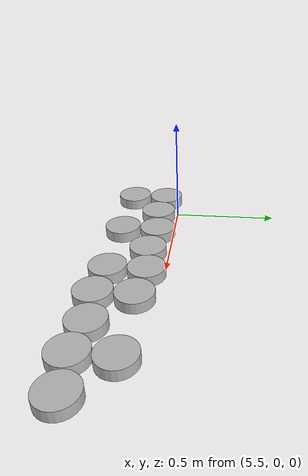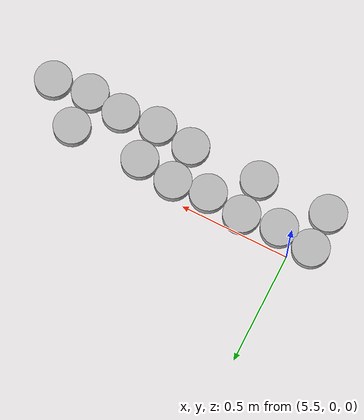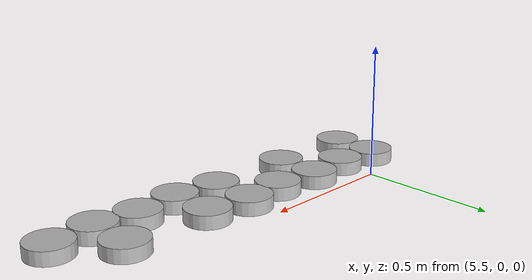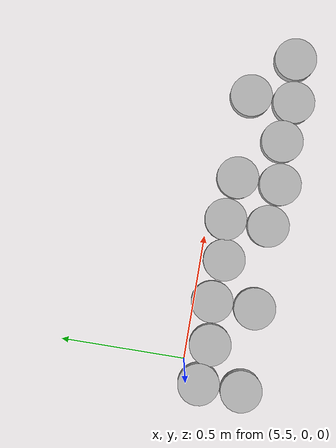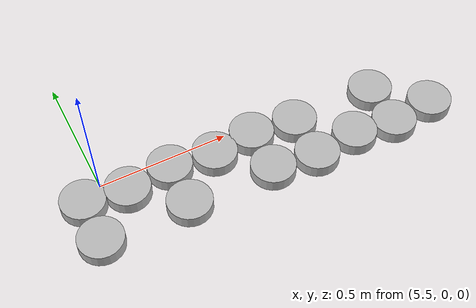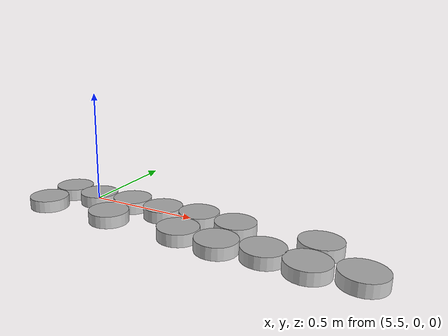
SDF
<sdf version="1.6">
 <world name="default">
  <model name="SnowPuck-23-1-0">
   <pose>5.42 -0.24 0.05  0 0 0</pose>
   <link name="link">
    <inertial>
     <mass>0.01</mass>
     <inertia><ixx>0.145833</ixx><ixy>0</ixy><ixz>0</ixz><iyy>0.145833</iyy><iyz>0</iyz><izz>0.125</izz></inertia>
    </inertial>
    <collision name="collision">
     <geometry><cylinder><radius>.05</radius><length>0.04</length></cylinder></geometry>
    </collision>
    <visual name="visual">
     <geometry><cylinder><radius>.083333</radius><length>0.05</length></cylinder></geometry>
    </visual>
   </link>
  </model>
  <model name="SnowPuck-23-2-0">
   <pose>5.42 -0.07 0.05  0 0 0</pose>
   <link name="link">
    <inertial>
     <mass>0.01</mass>
     <inertia><ixx>0.145833</ixx><ixy>0</ixy><ixz>0</ixz><iyy>0.145833</iyy><iyz>0</iyz><izz>0.125</izz></inertia>
    </inertial>
    <collision name="collision">
     <geometry><cylinder><radius>.05</radius><length>0.04</length></cylinder></geometry>
    </collision>
    <visual name="visual">
     <geometry><cylinder><radius>.083333</radius><length>0.05</length></cylinder></geometry>
    </visual>
   </link>
  </model>
  <model name="SnowPuck-24-2-0">
   <pose>5.58 -0.09 0.05  0 0 0</pose>
   <link name="link">
    <inertial>
     <mass>0.01</mass>
     <inertia><ixx>0.145833</ixx><ixy>0</ixy><ixz>0</ixz><iyy>0.145833</iyy><iyz>0</iyz><izz>0.125</izz></inertia>
    </inertial>
    <collision name="collision">
     <geometry><cylinder><radius>.05</radius><length>0.04</length></cylinder></geometry>
    </collision>
    <visual name="visual">
     <geometry><cylinder><radius>.083333</radius><length>0.05</length></cylinder></geometry>
    </visual>
   </link>
  </model>
  <model name="SnowPuck-25-1-0">
   <pose>5.75 -0.24 0.05  0 0 0</pose>
   <link name="link">
    <inertial>
     <mass>0.01</mass>
     <inertia><ixx>0.145833</ixx><ixy>0</ixy><ixz>0</ixz><iyy>0.145833</iyy><iyz>0</iyz><izz>0.125</izz></inertia>
    </inertial>
    <collision name="collision">
     <geometry><cylinder><radius>.05</radius><length>0.04</length></cylinder></geometry>
    </collision>
    <visual name="visual">
     <geometry><cylinder><radius>.083333</radius><length>0.05</length></cylinder></geometry>
    </visual>
   </link>
  </model>
  <model name="SnowPuck-25-2-0">
   <pose>5.75 -0.07 0.05  0 0 0</pose>
   <link name="link">
    <inertial>
     <mass>0.01</mass>
     <inertia><ixx>0.145833</ixx><ixy>0</ixy><ixz>0</ixz><iyy>0.145833</iyy><iyz>0</iyz><izz>0.125</izz></inertia>
    </inertial>
    <collision name="collision">
     <geometry><cylinder><radius>.05</radius><length>0.04</length></cylinder></geometry>
    </collision>
    <visual name="visual">
     <geometry><cylinder><radius>.083333</radius><length>0.05</length></cylinder></geometry>
    </visual>
   </link>
  </model>
  <model name="SnowPuck-26-2-0">
   <pose>5.92 -0.09 0.05  0 0 0</pose>
   <link name="link">
    <inertial>
     <mass>0.01</mass>
     <inertia><ixx>0.145833</ixx><ixy>0</ixy><ixz>0</ixz><iyy>0.145833</iyy><iyz>0</iyz><izz>0.125</izz></inertia>
    </inertial>
    <collision name="collision">
     <geometry><cylinder><radius>.05</radius><length>0.04</length></cylinder></geometry>
    </collision>
    <visual name="visual">
     <geometry><cylinder><radius>.083333</radius><length>0.05</length></cylinder></geometry>
    </visual>
   </link>
  </model>
  <model name="SnowPuck-27-1-0">
   <pose>6.08 -0.24 0.05  0 0 0</pose>
   <link name="link">
    <inertial>
     <mass>0.01</mass>
     <inertia><ixx>0.145833</ixx><ixy>0</ixy><ixz>0</ixz><iyy>0.145833</iyy><iyz>0</iyz><izz>0.125</izz></inertia>
    </inertial>
    <collision name="collision">
     <geometry><cylinder><radius>.05</radius><length>0.04</length></cylinder></geometry>
    </collision>
    <visual name="visual">
     <geometry><cylinder><radius>.083333</radius><length>0.05</length></cylinder></geometry>
    </visual>
   </link>
  </model>
  <model name="SnowPuck-27-2-0">
   <pose>6.08 -0.07 0.05  0 0 0</pose>
   <link name="link">
    <inertial>
     <mass>0.01</mass>
     <inertia><ixx>0.145833</ixx><ixy>0</ixy><ixz>0</ixz><iyy>0.145833</iyy><iyz>0</iyz><izz>0.125</izz></inertia>
    </inertial>
    <collision name="collision">
     <geometry><cylinder><radius>.05</radius><length>0.04</length></cylinder></geometry>
    </collision>
    <visual name="visual">
     <geometry><cylinder><radius>.083333</radius><length>0.05</length></cylinder></geometry>
    </visual>
   </link>
  </model>
  <model name="SnowPuck-28-1-0">
   <pose>6.25 -0.26 0.05  0 0 0</pose>
   <link name="link">
    <inertial>
     <mass>0.01</mass>
     <inertia><ixx>0.145833</ixx><ixy>0</ixy><ixz>0</ixz><iyy>0.145833</iyy><iyz>0</iyz><izz>0.125</izz></inertia>
    </inertial>
    <collision name="collision">
     <geometry><cylinder><radius>.05</radius><length>0.04</length></cylinder></geometry>
    </collision>
    <visual name="visual">
     <geometry><cylinder><radius>.083333</radius><length>0.05</length></cylinder></geometry>
    </visual>
   </link>
  </model>
  <model name="SnowPuck-28-2-0">
   <pose>6.25 -0.09 0.05  0 0 0</pose>
   <link name="link">
    <inertial>
     <mass>0.01</mass>
     <inertia><ixx>0.145833</ixx><ixy>0</ixy><ixz>0</ixz><iyy>0.145833</iyy><iyz>0</iyz><izz>0.125</izz></inertia>
    </inertial>
    <collision name="collision">
     <geometry><cylinder><radius>.05</radius><length>0.04</length></cylinder></geometry>
    </collision>
    <visual name="visual">
     <geometry><cylinder><radius>.083333</radius><length>0.05</length></cylinder></geometry>
    </visual>
   </link>
  </model>
  <model name="SnowPuck-29-1-0">
   <pose>6.42 -0.24 0.05  0 0 0</pose>
   <link name="link">
    <inertial>
     <mass>0.01</mass>
     <inertia><ixx>0.145833</ixx><ixy>0</ixy><ixz>0</ixz><iyy>0.145833</iyy><iyz>0</iyz><izz>0.125</izz></inertia>
    </inertial>
    <collision name="collision">
     <geometry><cylinder><radius>.05</radius><length>0.04</length></cylinder></geometry>
    </collision>
    <visual name="visual">
     <geometry><cylinder><radius>.083333</radius><length>0.05</length></cylinder></geometry>
    </visual>
   </link>
  </model>
  <model name="SnowPuck-30-1-0">
   <pose>6.58 -0.26 0.05  0 0 0</pose>
   <link name="link">
    <inertial>
     <mass>0.01</mass>
     <inertia><ixx>0.145833</ixx><ixy>0</ixy><ixz>0</ixz><iyy>0.145833</iyy><iyz>0</iyz><izz>0.125</izz></inertia>
    </inertial>
    <collision name="collision">
     <geometry><cylinder><radius>.05</radius><length>0.04</length></cylinder></geometry>
    </collision>
    <visual name="visual">
     <geometry><cylinder><radius>.083333</radius><length>0.05</length></cylinder></geometry>
    </visual>
   </link>
  </model>
  <model name="SnowPuck-30-2-0">
   <pose>6.58 -0.09 0.05  0 0 0</pose>
   <link name="link">
    <inertial>
     <mass>0.01</mass>
     <inertia><ixx>0.145833</ixx><ixy>0</ixy><ixz>0</ixz><iyy>0.145833</iyy><iyz>0</iyz><izz>0.125</izz></inertia>
    </inertial>
    <collision name="collision">
     <geometry><cylinder><radius>.05</radius><length>0.04</length></cylinder></geometry>
    </collision>
    <visual name="visual">
     <geometry><cylinder><radius>.083333</radius><length>0.05</length></cylinder></geometry>
    </visual>
   </link>
  </model>
  <model name="SnowPuck-31-1-0">
   <pose>6.75 -0.24 0.05  0 0 0</pose>
   <link name="link">
    <inertial>
     <mass>0.01</mass>
     <inertia><ixx>0.145833</ixx><ixy>0</ixy><ixz>0</ixz><iyy>0.145833</iyy><iyz>0</iyz><izz>0.125</izz></inertia>
    </inertial>
    <collision name="collision">
     <geometry><cylinder><radius>.05</radius><length>0.04</length></cylinder></geometry>
    </collision>
    <visual name="visual">
     <geometry><cylinder><radius>.083333</radius><length>0.05</length></cylinder></geometry>
    </visual>
   </link>
  </model>
 </world>
</sdf>
